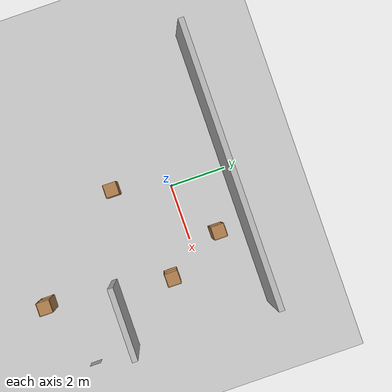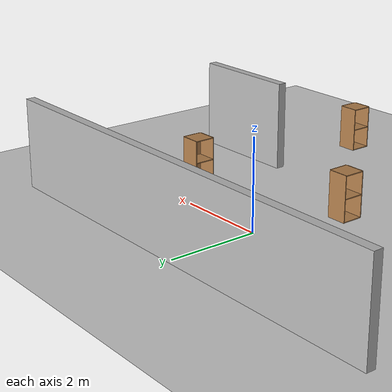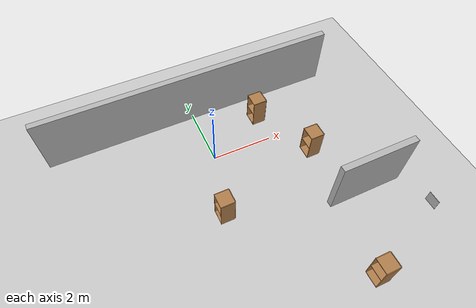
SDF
<sdf version="1.7">
 <world name="default">
  <model name="ground_plane">
   <static>1</static>
   <link name="link">
    <collision name="collision">
     <geometry><plane><normal>0 0 1</normal><size>100 100</size></plane></geometry>
     <surface><friction><ode><mu>100</mu><mu2>50</mu2></ode></friction></surface>
    </collision>
    <visual name="visual">
     <cast_shadows>0</cast_shadows>
     <geometry><plane><normal>0 0 1</normal><size>100 100</size></plane></geometry>
     <material>
      <script><uri>file://media/materials/scripts/gazebo.material</uri><name>Gazebo/Grey</name></script>
     </material>
    </visual>
    <velocity_decay><linear>0</linear><angular>0</angular></velocity_decay>
   </link>
  </model>
  <model name="wall_2_model">
   <pose>0 2 1 0 -0 0</pose>
   <static>1</static>
   <link name="wall_2_body">
    <inertial>
     <mass>1</mass>
     <inertia><ixx>1</ixx><ixy>0</ixy><ixz>0</ixz><iyy>1</iyy><iyz>0</iyz><izz>1</izz></inertia>
    </inertial>
    <collision name="collision"><geometry><box><size>10 0.2 2</size></box></geometry></collision>
    <visual name="visual"><geometry><box><size>10 0.2 2</size></box></geometry></visual>
    <velocity_decay><linear>0</linear><angular>0</angular></velocity_decay>
   </link>
  </model>
  <model name="wall_6_model">
   <pose>3.75 -3 1 0 -0 0</pose>
   <static>1</static>
   <link name="wall_6_body">
    <inertial>
     <mass>1</mass>
     <inertia><ixx>1</ixx><ixy>0</ixy><ixz>0</ixz><iyy>1</iyy><iyz>0</iyz><izz>1</izz></inertia>
    </inertial>
    <collision name="collision"><geometry><box><size>2.5 0.2 2</size></box></geometry></collision>
    <visual name="visual"><geometry><box><size>2.5 0.2 2</size></box></geometry></visual>
    <velocity_decay><linear>0</linear><angular>0</angular></velocity_decay>
   </link>
  </model>
  <model name="cabinet">
   <static>1</static>
   <link name="cabinet_bottom_plate">
    <inertial>
     <pose>0 0 -1 0 -0 0</pose>
     <inertia><ixx>2.05</ixx><ixy>0</ixy><ixz>0</ixz><iyy>2.05</iyy><iyz>0</iyz><izz>2.05</izz></inertia>
     <mass>25</mass>
    </inertial>
    <collision name="cabinet_bottom_plate_geom">
     <pose>0 0 0.01 0 -0 0</pose>
     <geometry><box><size>0.45 0.45 0.02</size></box></geometry>
    </collision>
    <visual name="cabinet_bottom_plate_geom_visual">
     <pose>0 0 0.01 0 -0 0</pose>
     <geometry><box><size>0.45 0.45 0.02</size></box></geometry>
     <material>
      <script><uri>file://media/materials/scripts/gazebo.material</uri><name>Gazebo/Wood</name></script>
     </material>
    </visual>
    <collision name="cabinet_bottom_plate_geom_cabinet_back_plate">
     <pose>0.235 0 0.51 0 -0 0</pose>
     <geometry><box><size>0.02 0.45 1.02</size></box></geometry>
    </collision>
    <visual name="cabinet_bottom_plate_geom_cabinet_back_plate_visual">
     <pose>0.235 0 0.51 0 -0 0</pose>
     <geometry><box><size>0.02 0.45 1.02</size></box></geometry>
     <material>
      <script><uri>file://media/materials/scripts/gazebo.material</uri><name>Gazebo/Wood</name></script>
     </material>
    </visual>
    <collision name="cabinet_bottom_plate_geom_cabinet_left_plate">
     <pose>0 0.235 0.51 0 -0 0</pose>
     <geometry><box><size>0.45 0.02 1.02</size></box></geometry>
    </collision>
    <visual name="cabinet_bottom_plate_geom_cabinet_left_plate_visual">
     <pose>0 0.235 0.51 0 -0 0</pose>
     <geometry><box><size>0.45 0.02 1.02</size></box></geometry>
     <material>
      <script><uri>file://media/materials/scripts/gazebo.material</uri><name>Gazebo/Wood</name></script>
     </material>
    </visual>
    <collision name="cabinet_bottom_plate_geom_cabinet_middle_plate">
     <pose>0 0 0.51 0 -0 0</pose>
     <geometry><box><size>0.45 0.45 0.02</size></box></geometry>
    </collision>
    <visual name="cabinet_bottom_plate_geom_cabinet_middle_plate_visual">
     <pose>0 0 0.51 0 -0 0</pose>
     <geometry><box><size>0.45 0.45 0.02</size></box></geometry>
     <material>
      <script><uri>file://media/materials/scripts/gazebo.material</uri><name>Gazebo/Wood</name></script>
     </material>
    </visual>
    <collision name="cabinet_bottom_plate_geom_cabinet_right_plate">
     <pose>0 -0.235 0.51 0 -0 0</pose>
     <geometry><box><size>0.45 0.02 1.02</size></box></geometry>
    </collision>
    <visual name="cabinet_bottom_plate_geom_cabinet_right_plate_visual">
     <pose>0 -0.235 0.51 0 -0 0</pose>
     <geometry><box><size>0.45 0.02 1.02</size></box></geometry>
     <material>
      <script><uri>file://media/materials/scripts/gazebo.material</uri><name>Gazebo/Wood</name></script>
     </material>
    </visual>
    <collision name="cabinet_bottom_plate_geom_cabinet_top_plate">
     <pose>0 0 1.01 0 -0 0</pose>
     <geometry><box><size>0.45 0.45 0.02</size></box></geometry>
    </collision>
    <visual name="cabinet_bottom_plate_geom_cabinet_top_plate_visual">
     <pose>0 0 1.01 0 -0 0</pose>
     <geometry><box><size>0.45 0.45 0.02</size></box></geometry>
     <material>
      <script><uri>file://media/materials/scripts/gazebo.material</uri><name>Gazebo/Wood</name></script>
     </material>
    </visual>
    <velocity_decay><linear>0</linear><angular>0</angular></velocity_decay>
   </link>
   <pose>2 1 0 0 -0 0</pose>
  </model>
  <model name="cabinet_0">
   <static>1</static>
   <link name="cabinet_bottom_plate">
    <inertial>
     <pose>0 0 -1 0 -0 0</pose>
     <inertia><ixx>2.05</ixx><ixy>0</ixy><ixz>0</ixz><iyy>2.05</iyy><iyz>0</iyz><izz>2.05</izz></inertia>
     <mass>25</mass>
    </inertial>
    <collision name="cabinet_bottom_plate_geom">
     <pose>0 0 0.01 0 -0 0</pose>
     <geometry><box><size>0.45 0.45 0.02</size></box></geometry>
    </collision>
    <visual name="cabinet_bottom_plate_geom_visual">
     <pose>0 0 0.01 0 -0 0</pose>
     <geometry><box><size>0.45 0.45 0.02</size></box></geometry>
     <material>
      <script><uri>file://media/materials/scripts/gazebo.material</uri><name>Gazebo/Wood</name></script>
     </material>
    </visual>
    <collision name="cabinet_bottom_plate_geom_cabinet_back_plate">
     <pose>0.235 0 0.51 0 -0 0</pose>
     <geometry><box><size>0.02 0.45 1.02</size></box></geometry>
    </collision>
    <visual name="cabinet_bottom_plate_geom_cabinet_back_plate_visual">
     <pose>0.235 0 0.51 0 -0 0</pose>
     <geometry><box><size>0.02 0.45 1.02</size></box></geometry>
     <material>
      <script><uri>file://media/materials/scripts/gazebo.material</uri><name>Gazebo/Wood</name></script>
     </material>
    </visual>
    <collision name="cabinet_bottom_plate_geom_cabinet_left_plate">
     <pose>0 0.235 0.51 0 -0 0</pose>
     <geometry><box><size>0.45 0.02 1.02</size></box></geometry>
    </collision>
    <visual name="cabinet_bottom_plate_geom_cabinet_left_plate_visual">
     <pose>0 0.235 0.51 0 -0 0</pose>
     <geometry><box><size>0.45 0.02 1.02</size></box></geometry>
     <material>
      <script><uri>file://media/materials/scripts/gazebo.material</uri><name>Gazebo/Wood</name></script>
     </material>
    </visual>
    <collision name="cabinet_bottom_plate_geom_cabinet_middle_plate">
     <pose>0 0 0.51 0 -0 0</pose>
     <geometry><box><size>0.45 0.45 0.02</size></box></geometry>
    </collision>
    <visual name="cabinet_bottom_plate_geom_cabinet_middle_plate_visual">
     <pose>0 0 0.51 0 -0 0</pose>
     <geometry><box><size>0.45 0.45 0.02</size></box></geometry>
     <material>
      <script><uri>file://media/materials/scripts/gazebo.material</uri><name>Gazebo/Wood</name></script>
     </material>
    </visual>
    <collision name="cabinet_bottom_plate_geom_cabinet_right_plate">
     <pose>0 -0.235 0.51 0 -0 0</pose>
     <geometry><box><size>0.45 0.02 1.02</size></box></geometry>
    </collision>
    <visual name="cabinet_bottom_plate_geom_cabinet_right_plate_visual">
     <pose>0 -0.235 0.51 0 -0 0</pose>
     <geometry><box><size>0.45 0.02 1.02</size></box></geometry>
     <material>
      <script><uri>file://media/materials/scripts/gazebo.material</uri><name>Gazebo/Wood</name></script>
     </material>
    </visual>
    <collision name="cabinet_bottom_plate_geom_cabinet_top_plate">
     <pose>0 0 1.01 0 -0 0</pose>
     <geometry><box><size>0.45 0.45 0.02</size></box></geometry>
    </collision>
    <visual name="cabinet_bottom_plate_geom_cabinet_top_plate_visual">
     <pose>0 0 1.01 0 -0 0</pose>
     <geometry><box><size>0.45 0.45 0.02</size></box></geometry>
     <material>
      <script><uri>file://media/materials/scripts/gazebo.material</uri><name>Gazebo/Wood</name></script>
     </material>
    </visual>
    <velocity_decay><linear>0</linear><angular>0</angular></velocity_decay>
   </link>
   <pose>2.51573 -5.43949 0 0 -0 0</pose>
  </model>
  <model name="cabinet_3">
   <static>1</static>
   <link name="cabinet_bottom_plate">
    <inertial>
     <pose>0 0 -1 0 -0 0</pose>
     <inertia><ixx>2.05</ixx><ixy>0</ixy><ixz>0</ixz><iyy>2.05</iyy><iyz>0</iyz><izz>2.05</izz></inertia>
     <mass>25</mass>
    </inertial>
    <collision name="cabinet_bottom_plate_geom">
     <pose>0 0 0.01 0 -0 0</pose>
     <geometry><box><size>0.45 0.45 0.02</size></box></geometry>
    </collision>
    <visual name="cabinet_bottom_plate_geom_visual">
     <pose>0 0 0.01 0 -0 0</pose>
     <geometry><box><size>0.45 0.45 0.02</size></box></geometry>
     <material>
      <script><uri>file://media/materials/scripts/gazebo.material</uri><name>Gazebo/Wood</name></script>
     </material>
    </visual>
    <collision name="cabinet_bottom_plate_geom_cabinet_back_plate">
     <pose>0.235 0 0.51 0 -0 0</pose>
     <geometry><box><size>0.02 0.45 1.02</size></box></geometry>
    </collision>
    <visual name="cabinet_bottom_plate_geom_cabinet_back_plate_visual">
     <pose>0.235 0 0.51 0 -0 0</pose>
     <geometry><box><size>0.02 0.45 1.02</size></box></geometry>
     <material>
      <script><uri>file://media/materials/scripts/gazebo.material</uri><name>Gazebo/Wood</name></script>
     </material>
    </visual>
    <collision name="cabinet_bottom_plate_geom_cabinet_left_plate">
     <pose>0 0.235 0.51 0 -0 0</pose>
     <geometry><box><size>0.45 0.02 1.02</size></box></geometry>
    </collision>
    <visual name="cabinet_bottom_plate_geom_cabinet_left_plate_visual">
     <pose>0 0.235 0.51 0 -0 0</pose>
     <geometry><box><size>0.45 0.02 1.02</size></box></geometry>
     <material>
      <script><uri>file://media/materials/scripts/gazebo.material</uri><name>Gazebo/Wood</name></script>
     </material>
    </visual>
    <collision name="cabinet_bottom_plate_geom_cabinet_middle_plate">
     <pose>0 0 0.51 0 -0 0</pose>
     <geometry><box><size>0.45 0.45 0.02</size></box></geometry>
    </collision>
    <visual name="cabinet_bottom_plate_geom_cabinet_middle_plate_visual">
     <pose>0 0 0.51 0 -0 0</pose>
     <geometry><box><size>0.45 0.45 0.02</size></box></geometry>
     <material>
      <script><uri>file://media/materials/scripts/gazebo.material</uri><name>Gazebo/Wood</name></script>
     </material>
    </visual>
    <collision name="cabinet_bottom_plate_geom_cabinet_right_plate">
     <pose>0 -0.235 0.51 0 -0 0</pose>
     <geometry><box><size>0.45 0.02 1.02</size></box></geometry>
    </collision>
    <visual name="cabinet_bottom_plate_geom_cabinet_right_plate_visual">
     <pose>0 -0.235 0.51 0 -0 0</pose>
     <geometry><box><size>0.45 0.02 1.02</size></box></geometry>
     <material>
      <script><uri>file://media/materials/scripts/gazebo.material</uri><name>Gazebo/Wood</name></script>
     </material>
    </visual>
    <collision name="cabinet_bottom_plate_geom_cabinet_top_plate">
     <pose>0 0 1.01 0 -0 0</pose>
     <geometry><box><size>0.45 0.45 0.02</size></box></geometry>
    </collision>
    <visual name="cabinet_bottom_plate_geom_cabinet_top_plate_visual">
     <pose>0 0 1.01 0 -0 0</pose>
     <geometry><box><size>0.45 0.45 0.02</size></box></geometry>
     <material>
      <script><uri>file://media/materials/scripts/gazebo.material</uri><name>Gazebo/Wood</name></script>
     </material>
    </visual>
    <velocity_decay><linear>0</linear><angular>0</angular></velocity_decay>
   </link>
   <pose>3 -1 0 0 -0 0</pose>
  </model>
  <model name="cabinet_4">
   <static>1</static>
   <link name="cabinet_bottom_plate">
    <inertial>
     <pose>0 0 -1 0 -0 0</pose>
     <inertia><ixx>2.05</ixx><ixy>0</ixy><ixz>0</ixz><iyy>2.05</iyy><iyz>0</iyz><izz>2.05</izz></inertia>
     <mass>25</mass>
    </inertial>
    <collision name="cabinet_bottom_plate_geom">
     <pose>0 0 0.01 0 -0 0</pose>
     <geometry><box><size>0.45 0.45 0.02</size></box></geometry>
    </collision>
    <visual name="cabinet_bottom_plate_geom_visual">
     <pose>0 0 0.01 0 -0 0</pose>
     <geometry><box><size>0.45 0.45 0.02</size></box></geometry>
     <material>
      <script><uri>file://media/materials/scripts/gazebo.material</uri><name>Gazebo/Wood</name></script>
     </material>
    </visual>
    <collision name="cabinet_bottom_plate_geom_cabinet_back_plate">
     <pose>0.235 0 0.51 0 -0 0</pose>
     <geometry><box><size>0.02 0.45 1.02</size></box></geometry>
    </collision>
    <visual name="cabinet_bottom_plate_geom_cabinet_back_plate_visual">
     <pose>0.235 0 0.51 0 -0 0</pose>
     <geometry><box><size>0.02 0.45 1.02</size></box></geometry>
     <material>
      <script><uri>file://media/materials/scripts/gazebo.material</uri><name>Gazebo/Wood</name></script>
     </material>
    </visual>
    <collision name="cabinet_bottom_plate_geom_cabinet_left_plate">
     <pose>0 0.235 0.51 0 -0 0</pose>
     <geometry><box><size>0.45 0.02 1.02</size></box></geometry>
    </collision>
    <visual name="cabinet_bottom_plate_geom_cabinet_left_plate_visual">
     <pose>0 0.235 0.51 0 -0 0</pose>
     <geometry><box><size>0.45 0.02 1.02</size></box></geometry>
     <material>
      <script><uri>file://media/materials/scripts/gazebo.material</uri><name>Gazebo/Wood</name></script>
     </material>
    </visual>
    <collision name="cabinet_bottom_plate_geom_cabinet_middle_plate">
     <pose>0 0 0.51 0 -0 0</pose>
     <geometry><box><size>0.45 0.45 0.02</size></box></geometry>
    </collision>
    <visual name="cabinet_bottom_plate_geom_cabinet_middle_plate_visual">
     <pose>0 0 0.51 0 -0 0</pose>
     <geometry><box><size>0.45 0.45 0.02</size></box></geometry>
     <material>
      <script><uri>file://media/materials/scripts/gazebo.material</uri><name>Gazebo/Wood</name></script>
     </material>
    </visual>
    <collision name="cabinet_bottom_plate_geom_cabinet_right_plate">
     <pose>0 -0.235 0.51 0 -0 0</pose>
     <geometry><box><size>0.45 0.02 1.02</size></box></geometry>
    </collision>
    <visual name="cabinet_bottom_plate_geom_cabinet_right_plate_visual">
     <pose>0 -0.235 0.51 0 -0 0</pose>
     <geometry><box><size>0.45 0.02 1.02</size></box></geometry>
     <material>
      <script><uri>file://media/materials/scripts/gazebo.material</uri><name>Gazebo/Wood</name></script>
     </material>
    </visual>
    <collision name="cabinet_bottom_plate_geom_cabinet_top_plate">
     <pose>0 0 1.01 0 -0 0</pose>
     <geometry><box><size>0.45 0.45 0.02</size></box></geometry>
    </collision>
    <visual name="cabinet_bottom_plate_geom_cabinet_top_plate_visual">
     <pose>0 0 1.01 0 -0 0</pose>
     <geometry><box><size>0.45 0.45 0.02</size></box></geometry>
     <material>
      <script><uri>file://media/materials/scripts/gazebo.material</uri><name>Gazebo/Wood</name></script>
     </material>
    </visual>
    <velocity_decay><linear>0</linear><angular>0</angular></velocity_decay>
   </link>
   <pose>-0.537023 -2 0 0 -0 0</pose>
  </model>
  <model name="aruco_marker_0">
   <static>1</static>
   <link name="link">
    <visual name="visual">
     <geometry><box><size>0.385 0.385 0.01</size></box></geometry>
     <material>
      <script>
       <uri>model://aruco_marker_0/materials/scripts</uri>
       <uri>model://aruco_marker_0/materials/textures</uri>
       <name>ArucoMarker/ID0</name>
      </script>
     </material>
    </visual>
   </link>
   <pose>4.89915 -4.4244 0.794514 3.14159 -1.56753 3.14159</pose>
  </model>
 </world>
</sdf>
